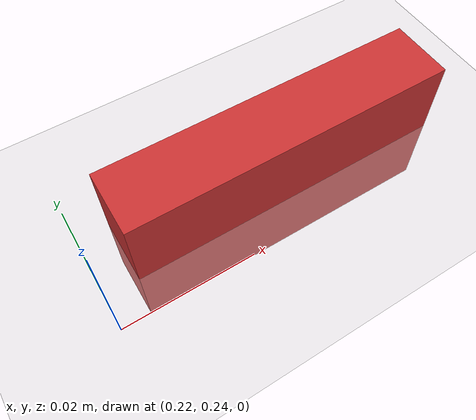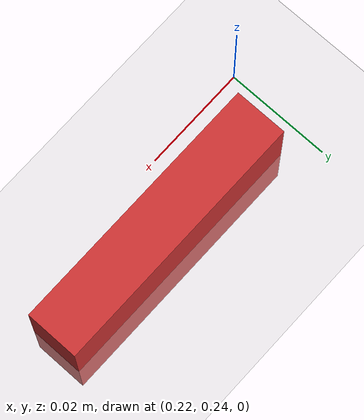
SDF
<?xml version="1.0"?>

<sdf version="1.10">

  <world name="tiny_wall_world">

    <!-- Ground plane -->

    <include>

      <uri>https://fuel.gazebosim.org/1.0/openrobotics/models/Ground Plane</uri>

    </include>

    <!-- Light -->

    <include>

      <uri>https://fuel.gazebosim.org/1.0/openrobotics/models/Sun</uri>

    </include>

    <!-- 2 cm (0.02m) high, 3 cm (0.03m) long, 1 cm (0.01m) thick -->

    <model name="tiny_wall">

      <static>true</static>

      <pose>0.25 0.25 0 0 0 0</pose>

      <link name="wall_link">

        <visual name="wall_visual">

          <geometry>

            <box>

              <size>0.05 0.01 0.025</size>

            </box>

          </geometry>

          <material>

            <ambient>0.8 0.2 0.2 1</ambient>

          </material>

        </visual>

        <collision name="wall_collision">

          <geometry>

            <box>

              <size>0.03 0.01 0.02</size>

            </box>

          </geometry>

        </collision>

      </link>

    </model>

  </world>

</sdf>
